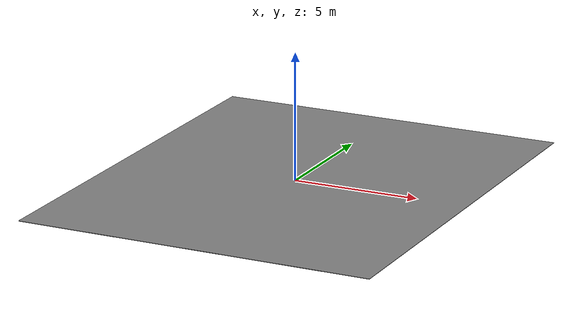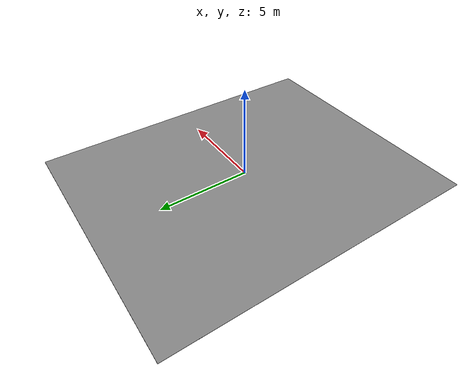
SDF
<?xml version="1.0" ?>
<sdf version="1.4">
    <model name='lawn_garden'>
      <link name='link'>
        <pose>0.0 0.0 0.0 0 0 0</pose>
        <inertial>
          <mass>10.0</mass>
          <inertia>
            <ixx>1</ixx>
            <ixy>0</ixy>
            <ixz>0</ixz>
            <iyy>1</iyy>
            <iyz>0</iyz>
            <izz>1</izz>
          </inertia>
        </inertial>
        <visual name='lawn_garden'>
          <pose>0 0 -0.011 0 0 0</pose>
          <geometry>
            <box>
              <size>14.075 17.185 0.02</size>
            </box>
          </geometry>
          <material>
            <!-- lawn/lawn01 -->
            <name>lawn01</name>
            <ambient>1 1 1 1</ambient>
            <diffuse>0.5 0.5 0.5 1.0</diffuse>
            <specular>0 0 0 1.0</specular>
            <shininess>12.5</shininess>
            <pbr>
              <metal>
                <albedo_map>model://base_materials/lawn/textures/lawn01.png</albedo_map>
                <max_anisotropy>16</max_anisotropy>
                <metalness>0</metalness>
              </metal>
            </pbr>
          </material>
        </visual>
        <collision name='collision_lawn_garden'>
          <pose>0 0 -0.011 0 0 0</pose>
          <geometry>
            <box>
              <size>14.075 17.185 0.02</size>
            </box>
          </geometry>
          <max_contacts>10</max_contacts>
          <surface>
            <bounce/>
            <friction>
              <ode/>
            </friction>
            <contact>
              <ode/>
            </contact>
          </surface>
        </collision>
        <velocity_decay>
          <linear>0</linear>
          <angular>0</angular>
        </velocity_decay>
        <self_collide>0</self_collide>
        <kinematic>0</kinematic>
        <gravity>1</gravity>
      </link>
      <static>1</static>
    </model>
</sdf>
